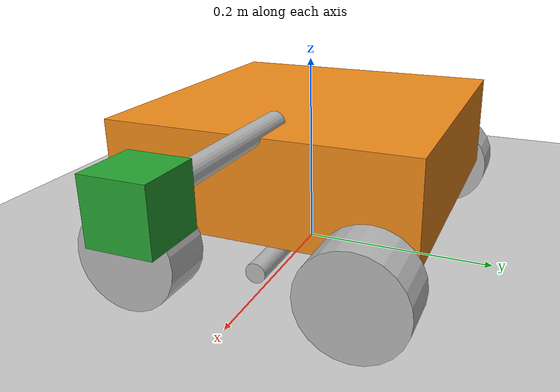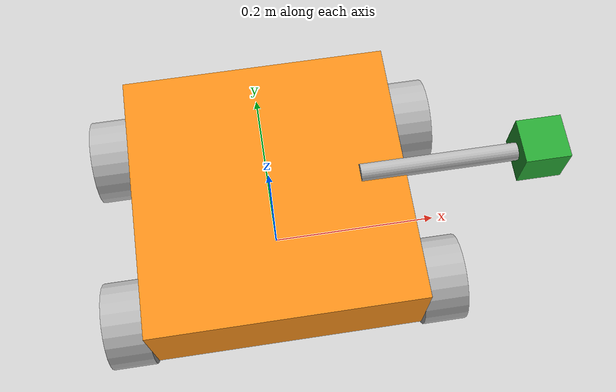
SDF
<sdf version="1.6">
 <world name="default">
  <model name="ground_plane">
   <static>1</static>
   <link name="link">
    <collision name="collision">
     <geometry><plane><normal>0 0 1</normal><size>100 100</size></plane></geometry>
     <surface><friction><ode><mu>100</mu><mu2>50</mu2></ode></friction></surface>
    </collision>
    <visual name="visual">
     <cast_shadows>0</cast_shadows>
     <geometry><plane><normal>0 0 1</normal><size>100 100</size></plane></geometry>
     <material>
      <script><uri>file://media/materials/scripts/gazebo.material</uri><name>Gazebo/Grey</name></script>
     </material>
    </visual>
   </link>
  </model>
  <light name="sun" type="directional">
   <pose>0 0 10 0 -0 0</pose>
   <diffuse>0.8 0.8 0.8 1</diffuse>
   <specular>0.1 0.1 0.1 1</specular>
   <attenuation>
    <range>1000</range>
    <constant>0.9</constant>
    <linear>0.01</linear>
    <quadratic>0.001</quadratic>
   </attenuation>
   <direction>-0.5 0.5 -1</direction>
  </light>
  <gravity>0 0 -9.8</gravity>
  <magnetic_field>6e-06 2.3e-05 -4.2e-05</magnetic_field>
  <atmosphere type="adiabatic"/>
  <physics name="default_physics" default="0" type="ode">
   <max_step_size>0.001</max_step_size>
   <real_time_factor>1</real_time_factor>
   <real_time_update_rate>1000</real_time_update_rate>
  </physics>
  <scene><ambient>0.4 0.4 0.4 1</ambient><background>0.7 0.7 0.7 1</background><shadows>1</shadows></scene>
  <spherical_coordinates>
   <surface_model>EARTH_WGS84</surface_model>
   <latitude_deg>0</latitude_deg>
   <longitude_deg>0</longitude_deg>
   <elevation>0</elevation>
   <heading_deg>0</heading_deg>
  </spherical_coordinates>
  <model name="mybot">
   <link name="chassis">
    <inertial>
     <pose>0 0.018438 0.063669 0 -0 0</pose>
     <mass>11.01</mass>
     <inertia>
      <ixx>1.05763</ixx>
      <ixy>0</ixy>
      <ixz>0</ixz>
      <iyy>2.02047</iyy>
      <iyz>-0.0273751</iyz>
      <izz>0.237158</izz>
     </inertia>
    </inertial>
    <sensor name="camera1" type="camera">
     <update_rate>30</update_rate>
     <camera name="chassis">
      <horizontal_fov>1.39626</horizontal_fov>
      <image><width>800</width><height>800</height><format>R8G8B8</format></image>
      <clip><near>0.02</near><far>300</far></clip>
     </camera>
     <plugin name="camera_controller" filename="libgazebo_ros_camera.so">
      <alwaysOn>true</alwaysOn>
      <updateRate>0.0</updateRate>
      <cameraName>mybot/camera1</cameraName>
      <imageTopicName>image_raw</imageTopicName>
      <cameraInfoTopicName>camera_info</cameraInfoTopicName>
      <frameName>camera</frameName>
      <hackBaseline>0.07</hackBaseline>
      <distortionK1>0.0</distortionK1>
      <distortionK2>0.0</distortionK2>
      <distortionK3>0.0</distortionK3>
      <distortionT1>0.0</distortionT1>
      <distortionT2>0.0</distortionT2>
      <robotNamespace>/mybot/</robotNamespace>
     </plugin>
     <pose>0 0.3 0.1 3.14159 1.57079 -1.57079</pose>
    </sensor>
    <visual name="chassis_visual_visual">
     <pose>0 0 0.05 0 -0 0</pose>
     <geometry><box><size>0.3 0.3 0.1</size></box></geometry>
     <material>
      <script><name>Gazebo/Orange</name><uri>file://media/materials/scripts/gazebo.material</uri></script>
      <ambient>1 0.5088 0.0468 1</ambient>
      <diffuse>1 0.5088 0.0468 1</diffuse>
      <specular>0.5 0.5 0.5 1</specular>
      <emissive>0 0 0 1</emissive>
     </material>
    </visual>
    <visual name="chassis_fixed_joint_lump__camera_pole_visual_1">
     <pose>0 0.2 0.1 1.57075 -0 0</pose>
     <geometry><cylinder><length>0.2</length><radius>0.01</radius></cylinder></geometry>
    </visual>
    <visual name="chassis_fixed_joint_lump__camera_visual_2">
     <pose>0 0.3 0.1 3.14159 1.57079 -1.57079</pose>
     <geometry><box><size>0.05 0.05 0.05</size></box></geometry>
     <material>
      <script><name>Gazebo/Green</name><uri>file://media/materials/scripts/gazebo.material</uri></script>
      <ambient>0 1 0 1</ambient>
      <diffuse>0 1 0 1</diffuse>
      <specular>0.1 0.1 0.1 1</specular>
      <emissive>0 0 0 1</emissive>
     </material>
    </visual>
    <collision name="chassis_fixed_joint_lump__collision_collision">
     <pose>0 0 0.05 0 -0 0</pose>
     <geometry><box><size>0.3 0.3 0.1</size></box></geometry>
     <surface>
      <friction>
       <ode><mu>1</mu><mu2>1</mu2><fdir1>0 0 0</fdir1><slip1>0</slip1><slip2>0</slip2></ode>
       <torsional>
        <coefficient>1</coefficient>
        <patch_radius>0</patch_radius>
        <surface_radius>0</surface_radius>
        <use_patch_radius>1</use_patch_radius>
        <ode><slip>0</slip></ode>
       </torsional>
      </friction>
      <bounce><restitution_coefficient>0</restitution_coefficient><threshold>1e+06</threshold></bounce>
      <contact>
       <collide_without_contact>0</collide_without_contact>
       <collide_without_contact_bitmask>1</collide_without_contact_bitmask>
       <collide_bitmask>1</collide_bitmask>
       <ode>
        <soft_cfm>0</soft_cfm>
        <soft_erp>0.2</soft_erp>
        <kp>1e+13</kp>
        <kd>1</kd>
        <max_vel>0.01</max_vel>
        <min_depth>0</min_depth>
       </ode>
       <bullet>
        <split_impulse>1</split_impulse>
        <split_impulse_penetration_threshold>-0.01</split_impulse_penetration_threshold>
        <soft_cfm>0</soft_cfm>
        <soft_erp>0.2</soft_erp>
        <kp>1e+13</kp>
        <kd>1</kd>
       </bullet>
      </contact>
     </surface>
    </collision>
    <collision name="chassis_fixed_joint_lump__collision_collision_1">
     <pose>0.1 0.2 0.1 3.14159 1.57079 3.14159</pose>
     <geometry><cylinder><radius>0.01</radius><length>0.2</length></cylinder></geometry>
     <surface>
      <friction>
       <ode><mu>1</mu><mu2>1</mu2><fdir1>0 0 0</fdir1><slip1>0</slip1><slip2>0</slip2></ode>
       <torsional>
        <coefficient>1</coefficient>
        <patch_radius>0</patch_radius>
        <surface_radius>0</surface_radius>
        <use_patch_radius>1</use_patch_radius>
        <ode><slip>0</slip></ode>
       </torsional>
      </friction>
      <bounce><restitution_coefficient>0</restitution_coefficient><threshold>1e+06</threshold></bounce>
      <contact>
       <collide_without_contact>0</collide_without_contact>
       <collide_without_contact_bitmask>1</collide_without_contact_bitmask>
       <collide_bitmask>1</collide_bitmask>
       <ode>
        <soft_cfm>0</soft_cfm>
        <soft_erp>0.2</soft_erp>
        <kp>1e+13</kp>
        <kd>1</kd>
        <max_vel>0.01</max_vel>
        <min_depth>0</min_depth>
       </ode>
       <bullet>
        <split_impulse>1</split_impulse>
        <split_impulse_penetration_threshold>-0.01</split_impulse_penetration_threshold>
        <soft_cfm>0</soft_cfm>
        <soft_erp>0.2</soft_erp>
        <kp>1e+13</kp>
        <kd>1</kd>
       </bullet>
      </contact>
     </surface>
    </collision>
    <collision name="chassis_fixed_joint_lump__camera_collision_2">
     <pose>0 0.3 0.1 3.14159 1.57079 -1.57079</pose>
     <geometry><box><size>0.05 0.05 0.05</size></box></geometry>
     <surface>
      <friction>
       <ode><mu>1</mu><mu2>1</mu2><fdir1>0 0 0</fdir1><slip1>0</slip1><slip2>0</slip2></ode>
       <torsional>
        <coefficient>1</coefficient>
        <patch_radius>0</patch_radius>
        <surface_radius>0</surface_radius>
        <use_patch_radius>1</use_patch_radius>
        <ode><slip>0</slip></ode>
       </torsional>
      </friction>
      <bounce><restitution_coefficient>0</restitution_coefficient><threshold>1e+06</threshold></bounce>
      <contact>
       <collide_without_contact>0</collide_without_contact>
       <collide_without_contact_bitmask>1</collide_without_contact_bitmask>
       <collide_bitmask>1</collide_bitmask>
       <ode>
        <soft_cfm>0</soft_cfm>
        <soft_erp>0.2</soft_erp>
        <kp>1e+13</kp>
        <kd>1</kd>
        <max_vel>0.01</max_vel>
        <min_depth>0</min_depth>
       </ode>
       <bullet>
        <split_impulse>1</split_impulse>
        <split_impulse_penetration_threshold>-0.01</split_impulse_penetration_threshold>
        <soft_cfm>0</soft_cfm>
        <soft_erp>0.2</soft_erp>
        <kp>1e+13</kp>
        <kd>1</kd>
       </bullet>
      </contact>
     </surface>
    </collision>
   </link>
   <link name="gripper_pole">
    <pose>-0 0 -0.03 0 -0 0</pose>
    <inertial>
     <pose>0 0 0.1 0 1.57075 0</pose>
     <mass>5</mass>
     <inertia><ixx>0.5</ixx><ixy>0</ixy><ixz>0</ixz><iyy>1</iyy><iyz>0</iyz><izz>0.1</izz></inertia>
    </inertial>
    <visual name="gripper_pole_visual">
     <pose>0 0 0 1.57075 -0 0</pose>
     <geometry><cylinder><length>0.3</length><radius>0.01</radius></cylinder></geometry>
     <material><shader type="vertex"><normal_map>__default__</normal_map></shader></material>
    </visual>
    <collision name="gripper_pole_fixed_joint_lump__collision_collision">
     <pose>0 0 0 1.57075 -0 0</pose>
     <geometry><cylinder><radius>0.01</radius><length>0.3</length></cylinder></geometry>
     <surface>
      <friction>
       <ode><mu>1</mu><mu2>1</mu2><fdir1>0 0 0</fdir1><slip1>0</slip1><slip2>0</slip2></ode>
       <torsional>
        <coefficient>1</coefficient>
        <patch_radius>0</patch_radius>
        <surface_radius>0</surface_radius>
        <use_patch_radius>1</use_patch_radius>
        <ode><slip>0</slip></ode>
       </torsional>
      </friction>
      <bounce><restitution_coefficient>1</restitution_coefficient><threshold>0</threshold></bounce>
      <contact>
       <collide_without_contact>0</collide_without_contact>
       <collide_without_contact_bitmask>1</collide_without_contact_bitmask>
       <collide_bitmask>1</collide_bitmask>
       <ode>
        <soft_cfm>0</soft_cfm>
        <soft_erp>0.2</soft_erp>
        <kp>1e+13</kp>
        <kd>1</kd>
        <max_vel>10</max_vel>
        <min_depth>0</min_depth>
       </ode>
       <bullet>
        <split_impulse>1</split_impulse>
        <split_impulse_penetration_threshold>-0.01</split_impulse_penetration_threshold>
        <soft_cfm>0</soft_cfm>
        <soft_erp>0.2</soft_erp>
        <kp>1e+13</kp>
        <kd>1</kd>
       </bullet>
      </contact>
     </surface>
    </collision>
   </link>
   <link name="left_back_wheel">
    <pose>-0.11 0.18 -0.01 0 -0 0</pose>
    <inertial>
     <pose>0 0 0 -0 1.5707 1.5707</pose>
     <mass>5</mass>
     <inertia><ixx>1</ixx><ixy>0</ixy><ixz>0</ixz><iyy>1</iyy><iyz>0</iyz><izz>1</izz></inertia>
    </inertial>
    <visual name="left_back_wheel_fixed_joint_lump__left_wheel_visual_visual">
     <pose>0 0 0 -3.13202 1.57079 -1.56132</pose>
     <geometry><cylinder><length>0.05</length><radius>0.05</radius></cylinder></geometry>
     <material><shader type="vertex"><normal_map>__default__</normal_map></shader></material>
    </visual>
    <collision name="left_back_wheel_fixed_joint_lump__collision_collision">
     <pose>0 0 0 3.14159 1.57079 -1.57089</pose>
     <geometry><cylinder><radius>0.05</radius><length>0.05</length></cylinder></geometry>
     <surface>
      <friction>
       <ode><mu>0</mu><mu2>0</mu2><fdir1>0 0 0</fdir1><slip1>0</slip1><slip2>0</slip2></ode>
       <torsional>
        <coefficient>1</coefficient>
        <patch_radius>0</patch_radius>
        <surface_radius>0</surface_radius>
        <use_patch_radius>1</use_patch_radius>
        <ode><slip>0</slip></ode>
       </torsional>
      </friction>
      <bounce><restitution_coefficient>0</restitution_coefficient><threshold>1e+06</threshold></bounce>
      <contact>
       <collide_without_contact>0</collide_without_contact>
       <collide_without_contact_bitmask>1</collide_without_contact_bitmask>
       <collide_bitmask>1</collide_bitmask>
       <ode>
        <soft_cfm>0</soft_cfm>
        <soft_erp>0.2</soft_erp>
        <kp>1e+13</kp>
        <kd>1</kd>
        <max_vel>0.01</max_vel>
        <min_depth>0</min_depth>
       </ode>
       <bullet>
        <split_impulse>1</split_impulse>
        <split_impulse_penetration_threshold>-0.01</split_impulse_penetration_threshold>
        <soft_cfm>0</soft_cfm>
        <soft_erp>0.2</soft_erp>
        <kp>1e+13</kp>
        <kd>1</kd>
       </bullet>
      </contact>
     </surface>
    </collision>
   </link>
   <link name="left_wheel">
    <pose>0.1 0.18 -0.01 0 -0 0</pose>
    <inertial>
     <pose>0 0 0 -0 1.5707 1.5707</pose>
     <mass>5</mass>
     <inertia><ixx>1</ixx><ixy>0</ixy><ixz>0</ixz><iyy>1</iyy><iyz>0</iyz><izz>1</izz></inertia>
    </inertial>
    <visual name="left_wheel_visual_visual">
     <pose>0 0 0 -3.13685 1.57079 -1.56615</pose>
     <geometry><cylinder><length>0.05</length><radius>0.05</radius></cylinder></geometry>
    </visual>
    <collision name="left_wheel_fixed_joint_lump__collision_collision">
     <pose>0 0 0 3.14159 1.57079 -1.57089</pose>
     <geometry><cylinder><radius>0.05</radius><length>0.05</length></cylinder></geometry>
     <surface>
      <friction>
       <ode><mu>1</mu><mu2>1</mu2><fdir1>0 0 0</fdir1><slip1>0</slip1><slip2>0</slip2></ode>
       <torsional>
        <coefficient>1</coefficient>
        <patch_radius>0</patch_radius>
        <surface_radius>0</surface_radius>
        <use_patch_radius>1</use_patch_radius>
        <ode><slip>0</slip></ode>
       </torsional>
      </friction>
      <bounce><restitution_coefficient>0</restitution_coefficient><threshold>1e+06</threshold></bounce>
      <contact>
       <collide_without_contact>0</collide_without_contact>
       <collide_without_contact_bitmask>1</collide_without_contact_bitmask>
       <collide_bitmask>1</collide_bitmask>
       <ode>
        <soft_cfm>0</soft_cfm>
        <soft_erp>0.2</soft_erp>
        <kp>1e+13</kp>
        <kd>1</kd>
        <max_vel>0.01</max_vel>
        <min_depth>0</min_depth>
       </ode>
       <bullet>
        <split_impulse>1</split_impulse>
        <split_impulse_penetration_threshold>-0.01</split_impulse_penetration_threshold>
        <soft_cfm>0</soft_cfm>
        <soft_erp>0.2</soft_erp>
        <kp>1e+13</kp>
        <kd>1</kd>
       </bullet>
      </contact>
     </surface>
    </collision>
   </link>
   <link name="right_back_wheel">
    <pose>-0.11 -0.18 -0.01 0 -0 0</pose>
    <inertial>
     <pose>0 0 0 -0 1.5707 1.5707</pose>
     <mass>5</mass>
     <inertia><ixx>1</ixx><ixy>0</ixy><ixz>0</ixz><iyy>1</iyy><iyz>0</iyz><izz>1</izz></inertia>
    </inertial>
    <visual name="right_back_wheel_fixed_joint_lump__right_wheel_visual_visual">
     <pose>0 0 0 -3.13202 1.57079 -1.56132</pose>
     <geometry><cylinder><length>0.05</length><radius>0.05</radius></cylinder></geometry>
     <material><shader type="vertex"><normal_map>__default__</normal_map></shader></material>
    </visual>
    <collision name="right_back_wheel_fixed_joint_lump__collision_collision">
     <pose>0 0 0 3.14159 1.57079 -1.57089</pose>
     <geometry><cylinder><radius>0.05</radius><length>0.05</length></cylinder></geometry>
     <surface>
      <friction>
       <ode><mu>0</mu><mu2>0</mu2><fdir1>0 0 0</fdir1><slip1>0</slip1><slip2>0</slip2></ode>
       <torsional>
        <coefficient>1</coefficient>
        <patch_radius>0</patch_radius>
        <surface_radius>0</surface_radius>
        <use_patch_radius>1</use_patch_radius>
        <ode><slip>0</slip></ode>
       </torsional>
      </friction>
      <bounce><restitution_coefficient>0</restitution_coefficient><threshold>1e+06</threshold></bounce>
      <contact>
       <collide_without_contact>0</collide_without_contact>
       <collide_without_contact_bitmask>1</collide_without_contact_bitmask>
       <collide_bitmask>1</collide_bitmask>
       <ode>
        <soft_cfm>0</soft_cfm>
        <soft_erp>0.2</soft_erp>
        <kp>1e+13</kp>
        <kd>1</kd>
        <max_vel>0.01</max_vel>
        <min_depth>0</min_depth>
       </ode>
       <bullet>
        <split_impulse>1</split_impulse>
        <split_impulse_penetration_threshold>-0.01</split_impulse_penetration_threshold>
        <soft_cfm>0</soft_cfm>
        <soft_erp>0.2</soft_erp>
        <kp>1e+13</kp>
        <kd>1</kd>
       </bullet>
      </contact>
     </surface>
    </collision>
   </link>
   <link name="right_wheel">
    <pose>0.1 -0.18 -0.01 0 -0 0</pose>
    <inertial>
     <pose>0 0 0 -0 1.5707 1.5707</pose>
     <mass>5</mass>
     <inertia><ixx>1</ixx><ixy>0</ixy><ixz>0</ixz><iyy>1</iyy><iyz>0</iyz><izz>1</izz></inertia>
    </inertial>
    <visual name="right_wheel_visual_visual">
     <pose>0 0 0 -3.13685 1.57079 -1.56615</pose>
     <geometry><cylinder><length>0.05</length><radius>0.05</radius></cylinder></geometry>
    </visual>
    <collision name="right_wheel_fixed_joint_lump__collision_collision">
     <pose>0 0 0 3.14159 1.57079 -1.57089</pose>
     <geometry><cylinder><radius>0.05</radius><length>0.05</length></cylinder></geometry>
     <surface>
      <friction>
       <ode><mu>1</mu><mu2>1</mu2><fdir1>0 0 0</fdir1><slip1>0</slip1><slip2>0</slip2></ode>
       <torsional>
        <coefficient>1</coefficient>
        <patch_radius>0</patch_radius>
        <surface_radius>0</surface_radius>
        <use_patch_radius>1</use_patch_radius>
        <ode><slip>0</slip></ode>
       </torsional>
      </friction>
      <bounce><restitution_coefficient>0</restitution_coefficient><threshold>1e+06</threshold></bounce>
      <contact>
       <collide_without_contact>0</collide_without_contact>
       <collide_without_contact_bitmask>1</collide_without_contact_bitmask>
       <collide_bitmask>1</collide_bitmask>
       <ode>
        <soft_cfm>0</soft_cfm>
        <soft_erp>0.2</soft_erp>
        <kp>1e+13</kp>
        <kd>1</kd>
        <max_vel>0.01</max_vel>
        <min_depth>0</min_depth>
       </ode>
       <bullet>
        <split_impulse>1</split_impulse>
        <split_impulse_penetration_threshold>-0.01</split_impulse_penetration_threshold>
        <soft_cfm>0</soft_cfm>
        <soft_erp>0.2</soft_erp>
        <kp>1e+13</kp>
        <kd>1</kd>
       </bullet>
      </contact>
     </surface>
    </collision>
   </link>
   <joint name="gripper_extension" type="prismatic">
    <parent>chassis</parent>
    <child>gripper_pole</child>
    <axis>
     <xyz>0 1 0</xyz>
     <use_parent_model_frame>1</use_parent_model_frame>
     <limit><lower>0</lower><upper>0.3</upper><effort>1000</effort><velocity>10</velocity></limit>
     <dynamics>
      <spring_reference>0</spring_reference>
      <spring_stiffness>0</spring_stiffness>
      <damping>0</damping>
      <friction>0</friction>
     </dynamics>
    </axis>
    <physics>
     <ode><limit><cfm>0</cfm><erp>0.2</erp></limit><suspension><cfm>0</cfm><erp>0.2</erp></suspension></ode>
    </physics>
   </joint>
   <joint name="left_back_wheel_hinge" type="revolute">
    <parent>chassis</parent>
    <child>left_back_wheel</child>
    <axis>
     <xyz>0 1 0</xyz>
     <use_parent_model_frame>1</use_parent_model_frame>
     <limit><lower>-1e+16</lower><upper>1e+16</upper><effort>-1</effort><velocity>-1</velocity></limit>
     <dynamics>
      <spring_reference>0</spring_reference>
      <spring_stiffness>0</spring_stiffness>
      <damping>0</damping>
      <friction>0</friction>
     </dynamics>
    </axis>
    <physics>
     <ode><limit><cfm>0</cfm><erp>0.2</erp></limit><suspension><cfm>0</cfm><erp>0.2</erp></suspension></ode>
    </physics>
   </joint>
   <joint name="left_wheel_hinge" type="revolute">
    <parent>chassis</parent>
    <child>left_wheel</child>
    <axis>
     <xyz>0 1 0</xyz>
     <use_parent_model_frame>1</use_parent_model_frame>
     <limit><lower>-1e+16</lower><upper>1e+16</upper><effort>-1</effort><velocity>-1</velocity></limit>
     <dynamics>
      <spring_reference>0</spring_reference>
      <spring_stiffness>0</spring_stiffness>
      <damping>0</damping>
      <friction>0</friction>
     </dynamics>
    </axis>
    <physics>
     <ode><limit><cfm>0</cfm><erp>0.2</erp></limit><suspension><cfm>0</cfm><erp>0.2</erp></suspension></ode>
    </physics>
   </joint>
   <joint name="right_back_wheel_hinge" type="revolute">
    <parent>chassis</parent>
    <child>right_back_wheel</child>
    <axis>
     <xyz>0 1 0</xyz>
     <use_parent_model_frame>1</use_parent_model_frame>
     <limit><lower>-1e+16</lower><upper>1e+16</upper><effort>-1</effort><velocity>-1</velocity></limit>
     <dynamics>
      <spring_reference>0</spring_reference>
      <spring_stiffness>0</spring_stiffness>
      <damping>0</damping>
      <friction>0</friction>
     </dynamics>
    </axis>
    <physics>
     <ode><limit><cfm>0</cfm><erp>0.2</erp></limit><suspension><cfm>0</cfm><erp>0.2</erp></suspension></ode>
    </physics>
   </joint>
   <joint name="right_wheel_hinge" type="revolute">
    <parent>chassis</parent>
    <child>right_wheel</child>
    <axis>
     <xyz>0 1 0</xyz>
     <use_parent_model_frame>1</use_parent_model_frame>
     <limit><lower>-1e+16</lower><upper>1e+16</upper><effort>-1</effort><velocity>-1</velocity></limit>
     <dynamics>
      <spring_reference>0</spring_reference>
      <spring_stiffness>0</spring_stiffness>
      <damping>0</damping>
      <friction>0</friction>
     </dynamics>
    </axis>
    <physics>
     <ode><limit><cfm>0</cfm><erp>0.2</erp></limit><suspension><cfm>0</cfm><erp>0.2</erp></suspension></ode>
    </physics>
   </joint>
   <static>0</static>
   <plugin name="differential_drive_controller" filename="libgazebo_ros_diff_drive.so">
    <legacyMode>false</legacyMode>
    <alwaysOn>true</alwaysOn>
    <updateRate>20</updateRate>
    <leftJoint>left_wheel_hinge</leftJoint>
    <rightJoint>right_wheel_hinge</rightJoint>
    <wheelDiameter>0.1</wheelDiameter>
    <torque>20</torque>
    <commandTopic>cmd_vel</commandTopic>
    <odometryTopic>odom</odometryTopic>
    <odometryFrame>odom</odometryFrame>
    <robotBaseFrame>chassis</robotBaseFrame>
    <robotNamespace>/mybot/</robotNamespace>
   </plugin>
   <plugin name="gazebo_ros_control" filename="libgazebo_ros_control.so">
    <robotNamespace>/mybot</robotNamespace>
    <robotSimType>gazebo_ros_control/DefaultRobotHWSim</robotSimType>
    <legacyModeNS>true</legacyModeNS>
   </plugin>
   <pose>0.000253 0.005954 0.059999 5e-06 -2e-06 -1.57326</pose>
  </model>
 </world>
</sdf>
